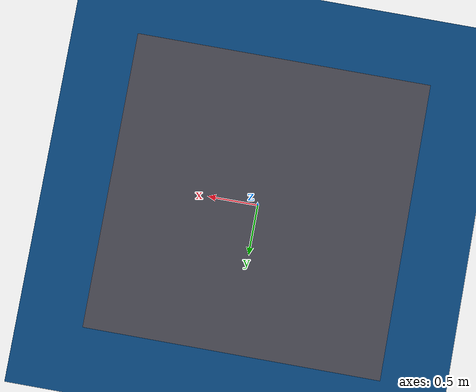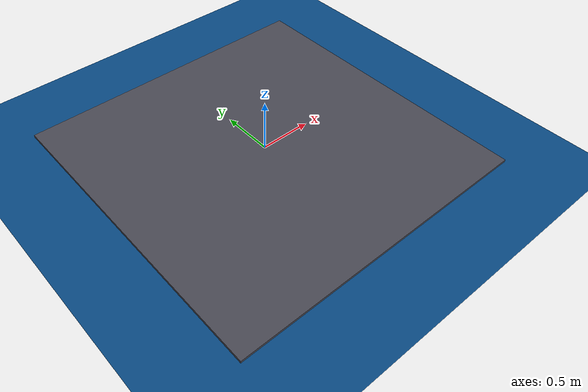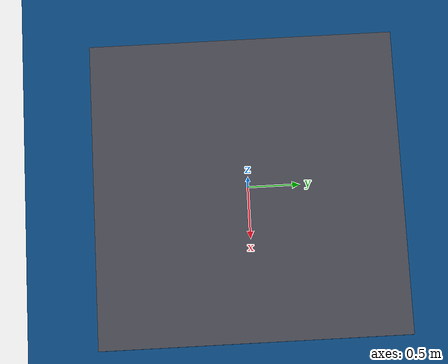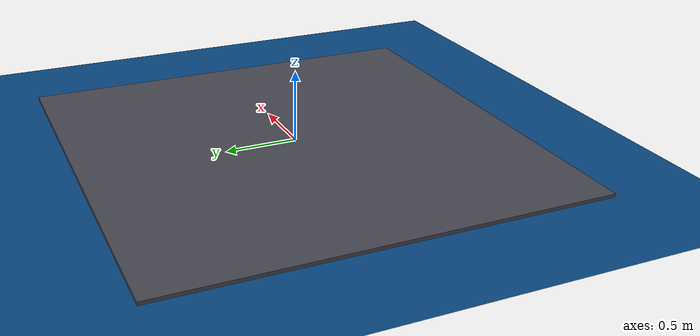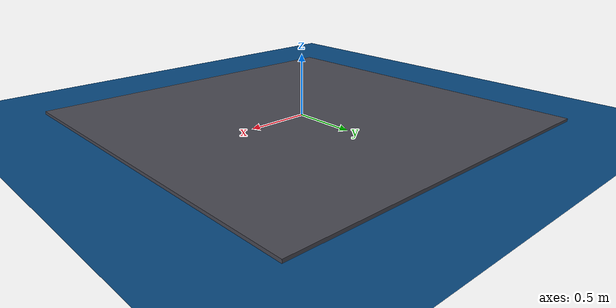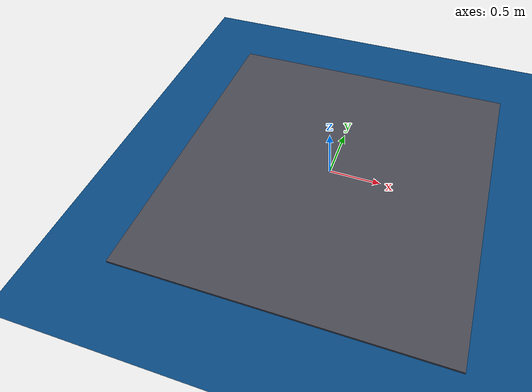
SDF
<?xml version="1.0" encoding="UTF-8"?>
<sdf version="1.9">
  <world name="default">
    <physics type="ode">
      <max_step_size>0.004</max_step_size>
      <real_time_factor>1.0</real_time_factor>
      <real_time_update_rate>250</real_time_update_rate>
    </physics>

    <gravity>0 0 -9.8</gravity>
    <magnetic_field>6e-06 2.3e-05 -4.2e-05</magnetic_field>
    <atmosphere type="adiabatic"/>

    <scene>
      <grid>false</grid>
      <ambient>0.35 0.45 0.55 1</ambient>
      <background>0.45 0.68 0.90 1</background>
      <shadows>true</shadows>
    </scene>

    <model name="ocean_surface">
      <static>true</static>
      <pose>0 0 -0.02 0 0 0</pose>
      <link name="surface_link">
        <visual name="ocean_visual">
          <cast_shadows>false</cast_shadows>
          <geometry>
            <plane>
              <normal>0 0 1</normal>
              <size>500 500</size>
            </plane>
          </geometry>
          <material>
            <ambient>0.02 0.12 0.22 1</ambient>
            <diffuse>0.03 0.28 0.50 1</diffuse>
            <specular>0.80 0.85 0.95 1</specular>
            <shininess>80</shininess>
          </material>
        </visual>
      </link>
    </model>

    <!-- The only rigid surface is a small pad under the initial UAV pose. -->
    <model name="takeoff_platform">
      <static>true</static>
      <pose>0 0 -0.05 0 0 0</pose>
      <link name="platform_link">
        <collision name="platform_collision">
          <geometry>
            <box>
              <size>3 3 0.1</size>
            </box>
          </geometry>
          <surface>
            <friction>
              <ode>
                <mu>1.0</mu>
                <mu2>1.0</mu2>
              </ode>
            </friction>
          </surface>
        </collision>
        <visual name="platform_visual">
          <geometry>
            <box>
              <size>3 3 0.1</size>
            </box>
          </geometry>
          <material>
            <ambient>0.18 0.18 0.20 1</ambient>
            <diffuse>0.28 0.28 0.32 1</diffuse>
            <specular>0.10 0.10 0.10 1</specular>
          </material>
        </visual>
      </link>
    </model>

    <light name="sunUTC" type="directional">
      <pose>0 0 500 0 0 0</pose>
      <cast_shadows>true</cast_shadows>
      <intensity>1</intensity>
      <direction>0.001 0.625 -0.78</direction>
      <diffuse>0.904 0.904 0.904 1</diffuse>
      <specular>0.271 0.271 0.271 1</specular>
      <attenuation>
        <range>2000</range>
        <linear>0</linear>
        <constant>1</constant>
        <quadratic>0</quadratic>
      </attenuation>
    </light>

    <spherical_coordinates>
      <surface_model>EARTH_WGS84</surface_model>
      <world_frame_orientation>ENU</world_frame_orientation>
      <latitude_deg>47.397971057728974</latitude_deg>
      <longitude_deg>8.546163739800146</longitude_deg>
      <elevation>0</elevation>
    </spherical_coordinates>
  </world>
</sdf>
